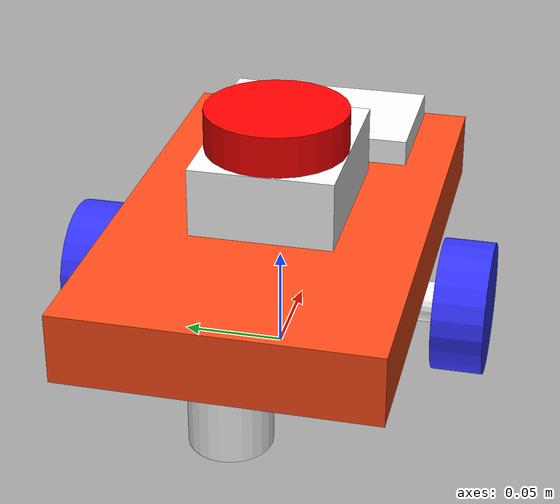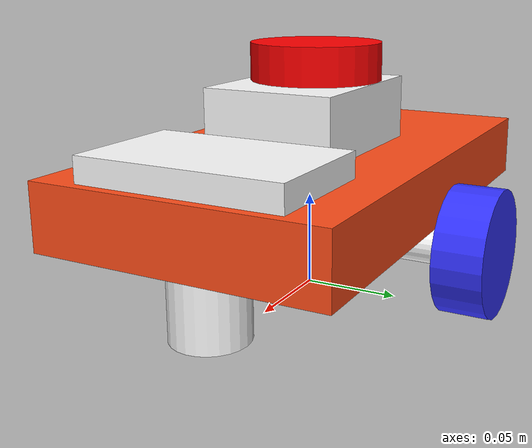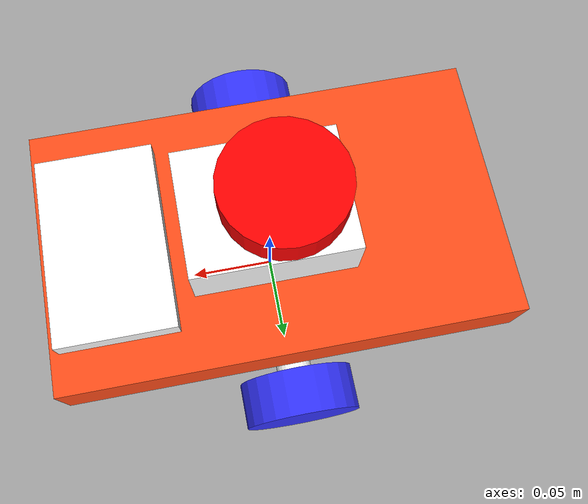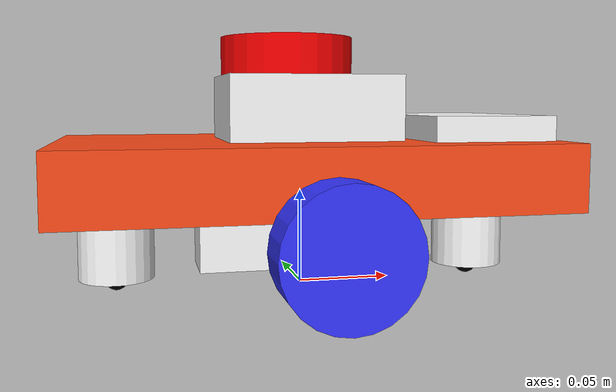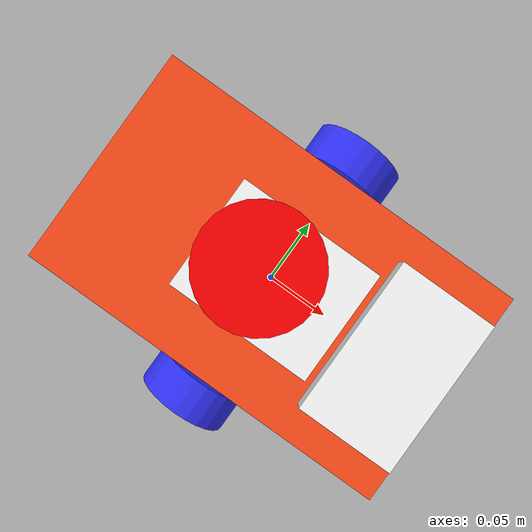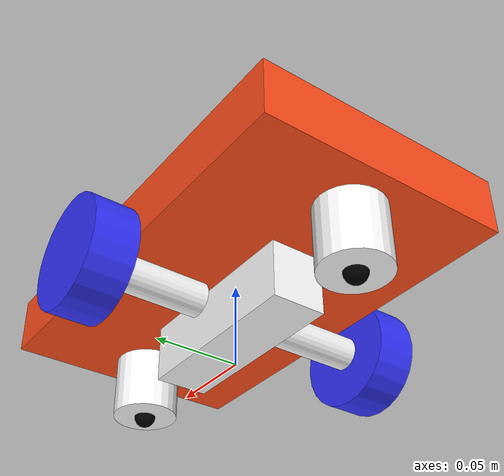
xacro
<?xml version="1.0"?>
<robot xmlns:xacro="http://www.ros.org/wiki/xacro"  name="robot">
    <xacro:arg name="sim_mode" default="false"/>
    <xacro:arg name="ros2_control" default="true"/>

    <xacro:include filename="robot_core.xacro" />

    <xacro:if value="$(arg ros2_control)">
        <xacro:include filename="ros2_control.xacro" />
    </xacro:if>
    <xacro:unless value="$(arg ros2_control)">
        <xacro:include filename="gazebo_control.xacro" />
    </xacro:unless>

    <xacro:include filename="lidar.xacro" />

</robot>

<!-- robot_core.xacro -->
<robot xmlns:xacro="http://www.ros.org/wiki/xacro">
    <xacro:include filename="inertial_macros.xacro" />

    <xacro:property name="chassis_length" value="0.255"/>
    <xacro:property name="chassis_width" value="0.15"/>
    <xacro:property name="chassis_height" value="0.034"/>
    <xacro:property name="chassis_mass" value="0.5"/>
    <xacro:property name="chassis_offset_z" value="0.044"/> <!-- Height of the chassis above the ground or base footprint -->
    <xacro:property name="motor_radius" value="0.01"/>
    <xacro:property name="motor_thickness" value="0.06"/>
    <xacro:property name="motor_mass" value="0.08"/>
    <xacro:property name="motor_offset_x" value="0.0"/>
    <xacro:property name="motor_offset_y" value="0.055"/>
    <xacro:property name="motor_offset_z" value="0.0"/>
    <xacro:property name="wheel_radius" value="0.0325"/>
    <xacro:property name="wheel_thickness" value="0.025"/>
    <xacro:property name="wheel_mass" value="0.03"/>
    <xacro:property name="wheel_offset_x" value="0.0"/>
    <xacro:property name="wheel_offset_y" value="0.093"/>
    <xacro:property name="wheel_offset_z" value="0.0"/>
    <xacro:property name="caster_wheel_radius" value="0.0065"/>
    <xacro:property name="caster_wheel_mass" value="0.02"/>
    <xacro:property name="caster_wheel_offset_x" value="0.098"/>
    <xacro:property name="battery_length" value="0.112"/>
    <xacro:property name="battery_width" value="0.032"/>
    <xacro:property name="battery_height" value="0.034"/>
    <xacro:property name="battery_mass" value="0.233"/>
    <xacro:property name="power_bank_length" value="0.105"/>
    <xacro:property name="power_bank_width" value="0.065"/>
    <xacro:property name="power_bank_height" value="0.013"/>
    <xacro:property name="power_bank_mass" value="0.200"/>
    <xacro:property name="power_bank_offset_x" value="0.09"/>
    <xacro:property name="power_bank_offset_y" value="0.0"/>

    <!-- Define colors -->
    <material name="white">
        <color rgba="1 1 1 1"/>
    </material>
    <material name="orange">
        <color rgba="1 0.3 0.1 1"/>
    </material>
    <material name="blue">
        <color rgba="0.2 0.2 1 1"/>
    </material>
    <material name="black">
        <color rgba="0 0 0 1"/>
    </material>
    <material name="red">
        <color rgba="1 0 0 1"/>
    </material>

    <!-- BASE_FOOTPRINT LINK -->

    <link name="base_footprint"></link>

    <!-- BASE LINK -->
    <joint name="base_link_joint" type="fixed">
        <parent link="base_footprint"/>
        <child link="base_link"/>
        <origin xyz="0 0 ${wheel_radius}" rpy="0 0 0"/>
    </joint>
    <link name="base_link"></link>

    <!-- CHASSIS LINK -->
    <joint name="chassis_joint" type="fixed">
        <parent link="base_footprint"/>
        <child link="chassis"/>
        <origin xyz="0 0 ${chassis_offset_z + chassis_height / 2}" rpy="0 0 0"/>
    </joint>

    <link name="chassis">
        <visual>
            <geometry>
                <box size="${chassis_length} ${chassis_width} ${chassis_height}"/>
            </geometry>
            <material name="orange"/>
        </visual>
        <collision>
            <geometry>
                <box size="${chassis_length} ${chassis_width} ${chassis_height}"/>
            </geometry>
        </collision>
        <xacro:inertial_box mass="${chassis_mass}" x="${chassis_length}" y="${chassis_width}" z="${chassis_height}">
            <origin xyz="0 0 0" rpy="0 0 0"/>
        </xacro:inertial_box>
    </link>
    <gazebo reference="chassis">
        <material>Gazebo/Orange</material>
    </gazebo>

    <!-- LEFT MOTOR LINK -->
    <joint name="left_motor_joint" type="fixed">
        <parent link="base_link"/>
        <child link="left_motor"/>
        <origin xyz="0 ${motor_offset_y} 0" rpy="${-pi/2} 0 0" />
    </joint>

    <link name="left_motor">
        <visual>
            <geometry>
                <cylinder radius="${motor_radius}" length="${motor_thickness}"/>
            </geometry>
            <material name="white"/>
        </visual>
        <collision>
            <geometry>
                <cylinder radius="${motor_radius}" length="${motor_thickness}"/>
            </geometry>
        </collision>
        <xacro:inertial_cylinder mass="${motor_mass}" length="${motor_thickness}" radius="${motor_radius}">
            <origin xyz="0 0 0" rpy="0 0 0"/>
        </xacro:inertial_cylinder>
    </link>
    <gazebo reference="left_motor">
        <material>Gazebo/White</material>
    </gazebo>

    <!-- LEFT WHEEL LINK -->
    <joint name="left_wheel_joint" type="continuous">
        <parent link="base_link"/>
        <child link="left_wheel"/>
        <origin xyz="0 ${wheel_offset_y} 0" rpy="${-pi/2} 0 0" />
        <axis xyz="0 0 1"/>
    </joint>

    <link name="left_wheel">
        <visual>
            <geometry>
                <cylinder radius="${wheel_radius}" length="${wheel_thickness}"/>
            </geometry>
            <material name="blue"/>
        </visual>
        <collision>
            <geometry>
                <sphere radius="${wheel_radius}"/>
            </geometry>
        </collision>
        <xacro:inertial_cylinder mass="${wheel_mass}" length="${wheel_thickness}" radius="${wheel_radius}">
            <origin xyz="0 0 0" rpy="0 0 0"/>
        </xacro:inertial_cylinder>
    </link>
    <gazebo reference="left_wheel">
        <material>Gazebo/Blue</material>
    </gazebo>

    <!-- RIGHT MOTOR LINK -->
    <joint name="right_motor_joint" type="fixed">
        <parent link="base_link"/>
        <child link="right_motor"/>
        <origin xyz="0 ${-motor_offset_y} 0" rpy="${pi/2} 0 0" />
    </joint>

    <link name="right_motor">
        <visual>
            <geometry>
                <cylinder radius="${motor_radius}" length="${motor_thickness}"/>
            </geometry>
            <material name="white"/>
        </visual>
        <collision>
            <geometry>
                <cylinder radius="${motor_radius}" length="${motor_thickness}"/>
            </geometry>
        </collision>
        <xacro:inertial_cylinder mass="${motor_mass}" length="${motor_thickness}" radius="${motor_radius}">
            <origin xyz="0 0 0" rpy="0 0 0"/>
        </xacro:inertial_cylinder>
    </link>
    <gazebo reference="right_motor">
        <material>Gazebo/White</material>
    </gazebo>

    <!-- RIGHT WHEEL LINK -->
    <joint name="right_wheel_joint" type="continuous">
        <parent link="base_link"/>
        <child link="right_wheel"/>
        <origin xyz="0 ${-wheel_offset_y} 0" rpy="${pi/2} 0 0" />
        <axis xyz="0 0 -1"/>
    </joint>

    <link name="right_wheel">
        <visual>
            <geometry>
                <cylinder radius="${wheel_radius}" length="${wheel_thickness}"/>
            </geometry>
            <material name="blue"/>
        </visual>
        <collision>
            <geometry>
                <sphere radius="${wheel_radius}"/>
            </geometry>
        </collision>
        <xacro:inertial_cylinder mass="${wheel_mass}" length="${wheel_thickness}" radius="${wheel_radius}">
            <origin xyz="0 0 0" rpy="0 0 0"/>
        </xacro:inertial_cylinder>
    </link>
    <gazebo reference="right_wheel">
        <material>Gazebo/Blue</material>
    </gazebo>

    <!-- FRONT CASTER WHEEL BASE LINK -->
    <joint name="front_caster_wheel_base_joint" type="fixed">
        <parent link="base_footprint"/>
        <child link="front_caster_wheel_base"/>
        <origin xyz="${caster_wheel_offset_x} 0 ${chassis_offset_z/2 + caster_wheel_radius/2}"/> <!-- front_caster_wheel_base = chassis_offset_z - caster_wheel_radius -->
    </joint>

    <link name="front_caster_wheel_base">
        <visual>
            <geometry>
                <cylinder radius="${caster_wheel_radius * 3}" length="${chassis_offset_z - caster_wheel_radius}"/>
            </geometry>
            <material name="white"/>
        </visual>
        <collision>
            <geometry>
                <cylinder radius="${caster_wheel_radius * 3}" length="${chassis_offset_z - caster_wheel_radius}"/>
            </geometry>
        </collision>
        <xacro:inertial_cylinder mass="0.005" length="${chassis_offset_z - caster_wheel_radius}" radius="${caster_wheel_radius * 3}">
            <origin xyz="0 0 0" rpy="0 0 0"/>
        </xacro:inertial_cylinder>
    </link>
    <gazebo reference="front_caster_wheel_base">
        <material>Gazebo/White</material>
    </gazebo>

    <!-- FRONT CASTER WHEEL LINK -->
    <joint name="front_caster_joint" type="fixed">
        <parent link="base_footprint"/>
        <child link="front_caster_wheel"/>
        <origin xyz="${caster_wheel_offset_x} 0 ${caster_wheel_radius}" rpy="0 0 0"/>
    </joint>
    <link name="front_caster_wheel">
        <visual>
            <geometry>
                <sphere radius="${caster_wheel_radius}"/>
            </geometry>
            <material name="black"/>
        </visual>
        <collision>
            <geometry>
                <sphere radius="${caster_wheel_radius}"/>
            </geometry>
        </collision>
        <xacro:inertial_sphere mass="${caster_wheel_mass}" radius="${caster_wheel_radius}">
            <origin xyz="0 0 0" rpy="0 0 0"/>
        </xacro:inertial_sphere>
    </link>
    <gazebo reference="front_caster_wheel">
        <material>Gazebo/Black</material>
        <mu1 value="0.001" />
        <mu2 value="0.001" />
    </gazebo>

    <!-- REAR CASTER BASE WHEEL LINK -->
    <joint name="rear_caster_wheel_base_joint" type="fixed">
        <parent link="base_footprint"/>
        <child link="rear_caster_wheel_base"/>
        <origin xyz="${-caster_wheel_offset_x} 0 ${chassis_offset_z/2 + caster_wheel_radius/2}"/> <!-- rear_caster_wheel_base = chassis_offset_z - caster_wheel_radius -->
    </joint>

    <link name="rear_caster_wheel_base">
        <visual>
            <geometry>
                <cylinder radius="${caster_wheel_radius * 3}" length="${chassis_offset_z - caster_wheel_radius}"/>
            </geometry>
            <material name="white"/>
        </visual>
        <collision>
            <geometry>
                <cylinder radius="${caster_wheel_radius * 3}" length="${chassis_offset_z - caster_wheel_radius}"/>
            </geometry>
        </collision>
        <xacro:inertial_cylinder mass="0.005" length="${chassis_offset_z - caster_wheel_radius}" radius="${caster_wheel_radius * 3}">
            <origin xyz="0 0 0" rpy="0 0 0"/>
        </xacro:inertial_cylinder>
    </link>
    <gazebo reference="rear_caster_wheel_base">
        <material>Gazebo/White</material>
    </gazebo>

    <!-- REAR CASTER WHEEL LINK -->
    <joint name="rear_caster_joint" type="fixed">
        <parent link="base_footprint"/>
        <child link="rear_caster_wheel"/>
        <origin xyz="${-caster_wheel_offset_x} 0 ${caster_wheel_radius}" rpy="0 0 0"/>
    </joint>
    <link name="rear_caster_wheel">
        <visual>
            <geometry>
                <sphere radius="${caster_wheel_radius}"/>
            </geometry>
            <material name="black"/>
        </visual>
        <collision>
            <geometry>
                <sphere radius="${caster_wheel_radius}"/>
            </geometry>
        </collision>
        <xacro:inertial_sphere mass="${caster_wheel_mass}" radius="${caster_wheel_radius}">
            <origin xyz="0 0 0" rpy="0 0 0"/>
        </xacro:inertial_sphere>
    </link>
    <gazebo reference="rear_caster_wheel">
        <material>Gazebo/Black</material>
        <mu1 value="0.001" />
        <mu2 value="0.001" />
    </gazebo>

    <!-- LIPO BATTERY LINK -->
    <joint name="lipo_battery_joint" type="fixed">
        <parent link="chassis"/>
        <child link="lipo_battery"/>
        <origin xyz="0 0 ${-chassis_height/2 - battery_height / 2}" rpy="0 0 0"/>
    </joint>

    <link name="lipo_battery">
        <visual>
            <geometry>
                <box size="${battery_length} ${battery_width} ${battery_height}"/>
            </geometry>
            <material name="white"/>
        </visual>
        <collision>
            <geometry>
                <box size="${battery_length} ${battery_width} ${battery_height}"/>
            </geometry>
        </collision>
        <xacro:inertial_box mass="${battery_mass}" x="${battery_length}" y="${battery_width}" z="${battery_height}">
            <origin xyz="0 0 0" rpy="0 0 0"/>
        </xacro:inertial_box>
    </link>
    <gazebo reference="lipo_battery">
        <material>Gazebo/White</material>
    </gazebo>

    <!-- POWER BANK LINK -->
    <joint name="power_bank_joint" type="fixed">
        <parent link="chassis"/>
        <child link="power_bank"/>
        <origin xyz="${power_bank_offset_x} 0 ${chassis_height/2 + power_bank_height/2}" rpy="0 0 ${-pi/2}"/>
    </joint>

    <link name="power_bank">
        <visual>
            <geometry>
                <box size="${power_bank_length} ${power_bank_width} ${power_bank_height}"/>
            </geometry>
            <material name="white"/>
        </visual>
        <collision>
            <geometry>
                <box size="${power_bank_length} ${power_bank_width} ${power_bank_height}"/>
            </geometry>
        </collision>
        <xacro:inertial_box mass="${power_bank_mass}" x="${power_bank_length}" y="${power_bank_width}" z="${power_bank_height}">
            <origin xyz="0 0 0" rpy="0 0 0"/>
        </xacro:inertial_box>
    </link>
    <gazebo reference="power_bank">
        <material>Gazebo/White</material>
    </gazebo>
</robot>

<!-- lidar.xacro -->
<robot xmlns:xacro="http://www.ros.org/wiki/xacro">
    <xacro:property name="laser_offset_x" value="0.0075"/>
    <xacro:property name="laser_radius" value="0.035"/>
    <xacro:property name="laser_thickness" value="0.02"/>
    <xacro:property name="laser_mass" value="0.1"/>
    <xacro:property name="laser_base_length" value="0.09"/>
    <xacro:property name="laser_base_width" value="0.07"/>
    <xacro:property name="laser_base_height" value="0.034"/><!-- 5.4cm w.r.t chessis top, 3.4cm base height -->
    <xacro:property name="laser_base_mass" value="0.5"/>

    <!-- LASER BASE LINK -->
    <joint name="laser_base_joint" type="fixed">
        <parent link="chassis"/>
        <child link="laser_base"/>
        <origin xyz="${laser_base_length/2 - laser_radius - laser_offset_x} 0 ${chassis_height/2 + laser_base_height/2}" rpy="0 0 0"/>
    </joint>

    <link name="laser_base">
        <visual>
            <geometry>
                <box size="${laser_base_length} ${laser_base_width} ${laser_base_height}"/>
            </geometry>
            <material name="white"/>
        </visual>
        <collision>
            <geometry>
                <box size="${laser_base_length} ${laser_base_width} ${laser_base_height}"/>
            </geometry>
        </collision>
        <xacro:inertial_box mass="${laser_base_mass}" x="${laser_base_length}" y="${laser_base_width}" z="${laser_base_height}">
            <origin xyz="0 0 0" rpy="0 0 0"/>
        </xacro:inertial_box>
    </link>
    <gazebo reference="laser_base">
        <material>Gazebo/White</material>
    </gazebo>

    <joint name="laser_joint" type="fixed">
        <parent link="chassis" />
        <child link="laser_frame" />
        <origin xyz="${-laser_offset_x} 0 ${chassis_height/2 + laser_base_height + laser_thickness/2}" rpy="0 0 0" />
    </joint>

    <link name="laser_frame">
        <visual>
            <geometry>
                <cylinder radius="${laser_radius}" length="${laser_thickness}"/>
            </geometry>
            <material name="red"/>
        </visual>
        <collision>
            <geometry>
                <cylinder radius="${laser_radius}" length="${laser_thickness}"/>
            </geometry>
        </collision>
        <xacro:inertial_cylinder mass="${laser_mass}" radius="${laser_radius}" length="${laser_thickness}">
            <origin xyz="0 0 0" rpy="0 0 0"/>
        </xacro:inertial_cylinder>
    </link>

    <gazebo reference="laser_frame">
        <material>Gazebo/Red</material>

        <sensor name="laser" type="ray">
            <pose> 0 0 0 0 0 0 </pose>
            <visualize>true</visualize>
            <update_rate>10</update_rate>
            <ray>
                <scan>
                    <horizontal>
                        <samples>360</samples>
                        <resolution>1</resolution>
                        <min_angle>-3.14</min_angle>
                        <max_angle>3.14</max_angle>
                    </horizontal>
                </scan>
                <range>
                    <min>0.3</min>
                    <max>12</max>
                    <resolution>0.01</resolution>
                </range>
            </ray>
            <plugin name="laser_controller" filename="libgazebo_ros_ray_sensor.so">
                <ros>
                    <remapping>~/out:=scan</remapping>
                </ros>
                <output_type>sensor_msgs/LaserScan</output_type>
                <frame_name>laser_frame</frame_name>
            </plugin>
        </sensor>
    </gazebo>
</robot>
